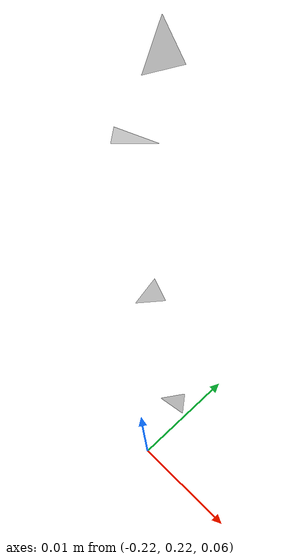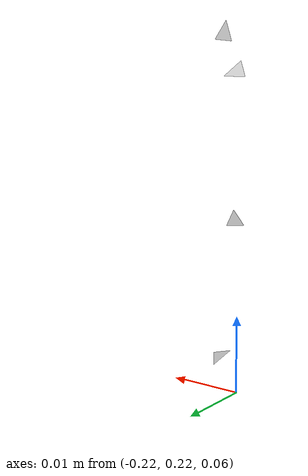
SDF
<?xml version='1.0'?>
<sdf version="1.4">
  <model name="wine_glass">
    <static>false</static>
    <link name="link">
      <inertial>
        <pose>-0.10966660596471757 0.07902287511278182 -0.003177539420683034 -1.1829984978016228 -0.21114046816482915 2.3011303265091705</pose>
        <mass>-1.3134104103720952e-05</mass>
        <inertia>
          <ixx>1.5807406538737372e-07</ixx>
          <ixy>4.70399486709226e-23</ixy>
          <ixz>-3.512328426010455e-23</ixz>
          <iyy>-1.1400608831630061e-07</iyy>
          <iyz>-6.820381977155914e-23</iyz>
          <izz>-2.914240779348444e-07</izz>
        </inertia>
      </inertial>
      <collision name="collision">
        <geometry>
          <mesh>
            <!-- Use a downsampled mesh for collisions -->
            <uri>model://023_wine_glass/tsdf/textured.obj</uri>
	        </mesh>
        </geometry>
        <surface>
      </surface>
      </collision>
      <visual name="visual">
        <geometry>
          <mesh>
            <uri>model://023_wine_glass/tsdf/textured.obj</uri>
	        </mesh>
        </geometry>
        <material>
          <script>
            <uri>model://023_wine_glass/wine_glass.material</uri>
            <name>wine_glass</name>
          </script>
        </material>
      </visual>
    </link>
  </model>
</sdf>
